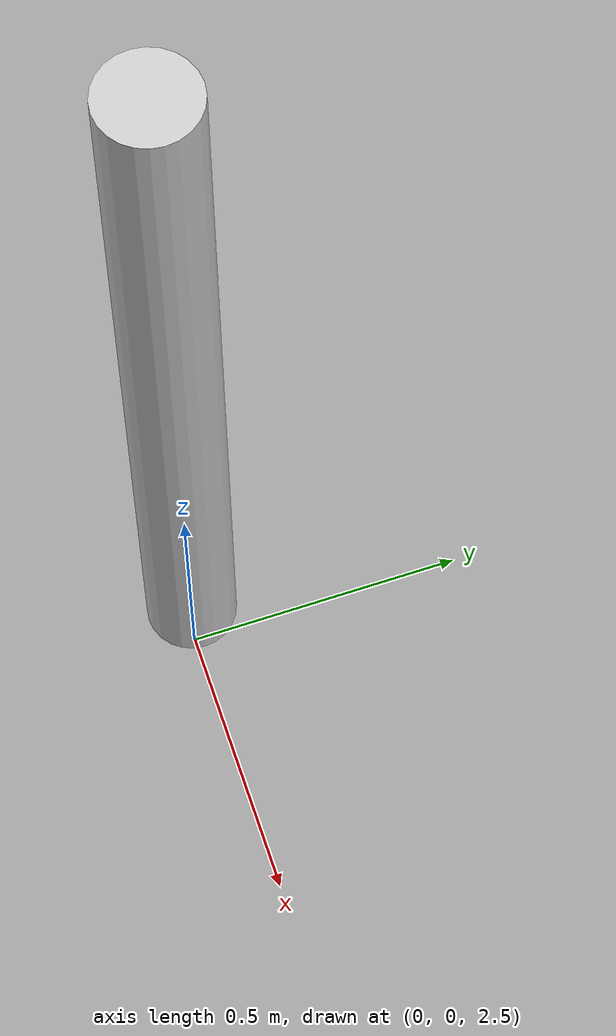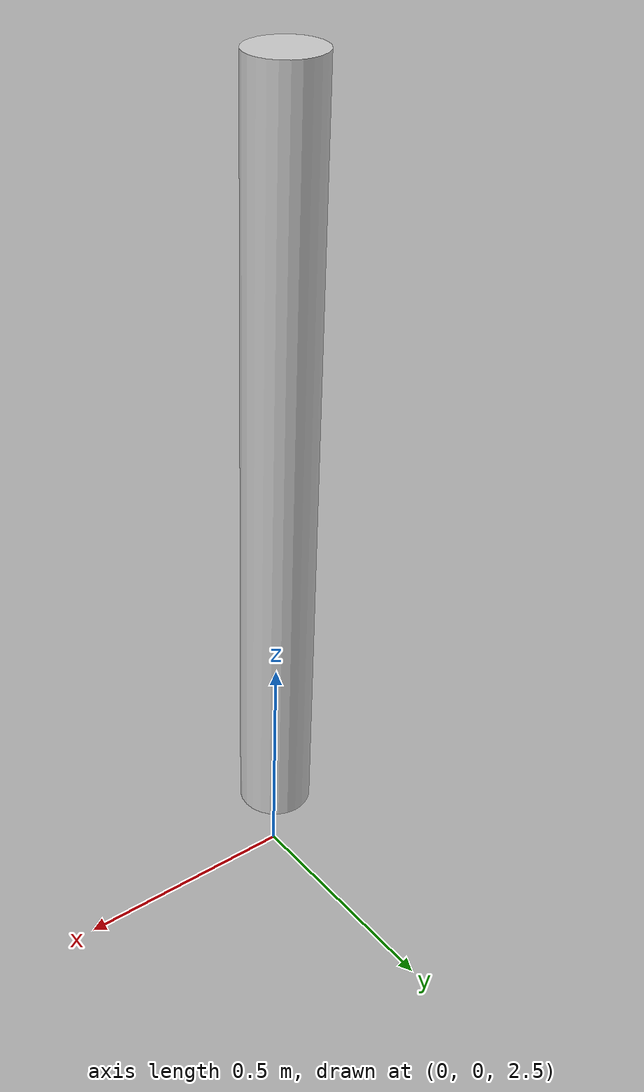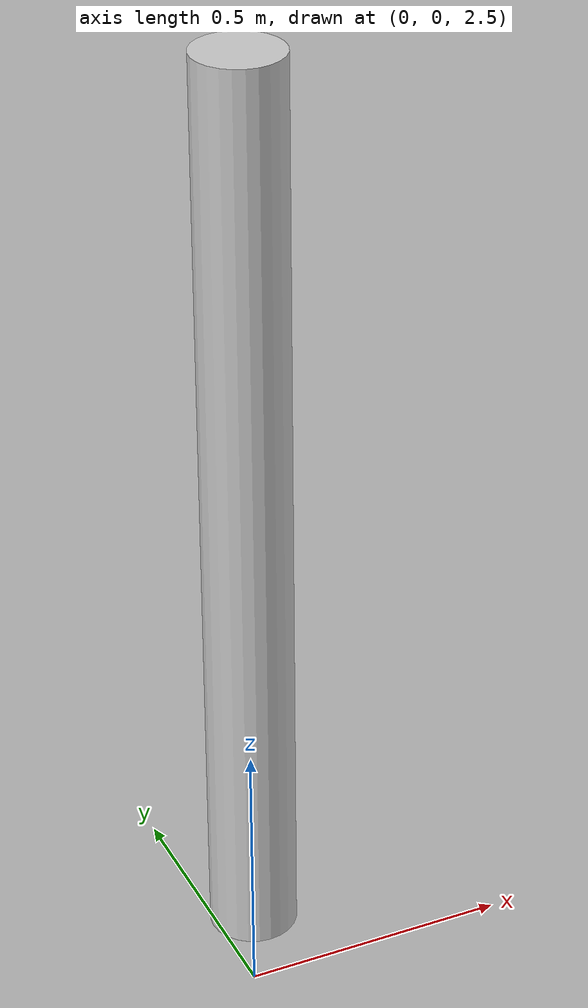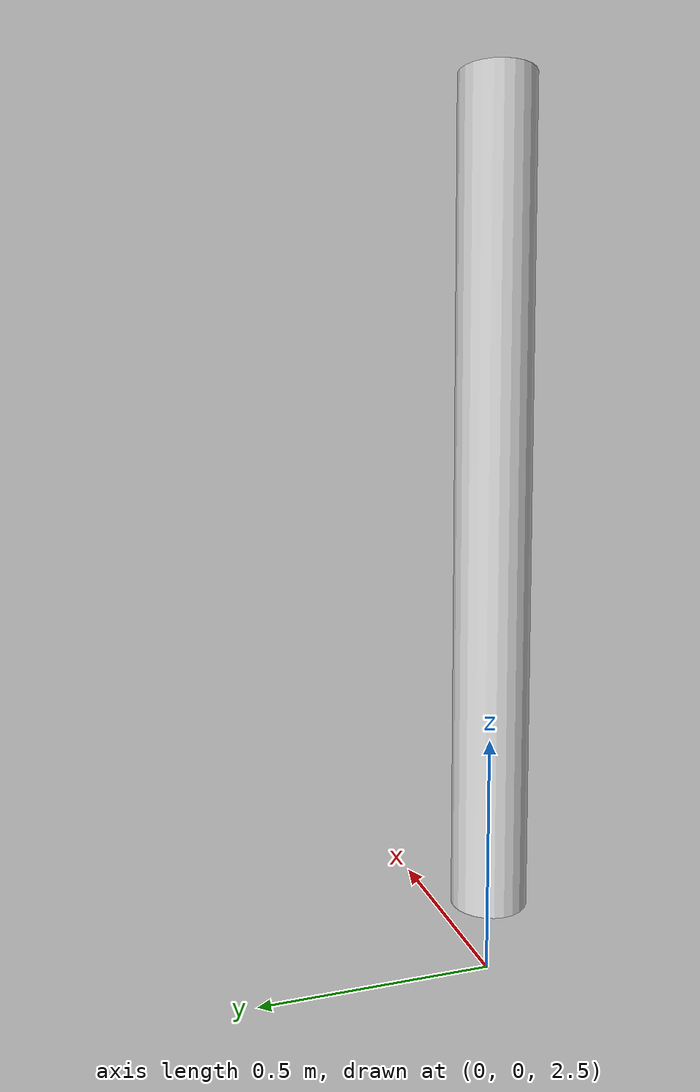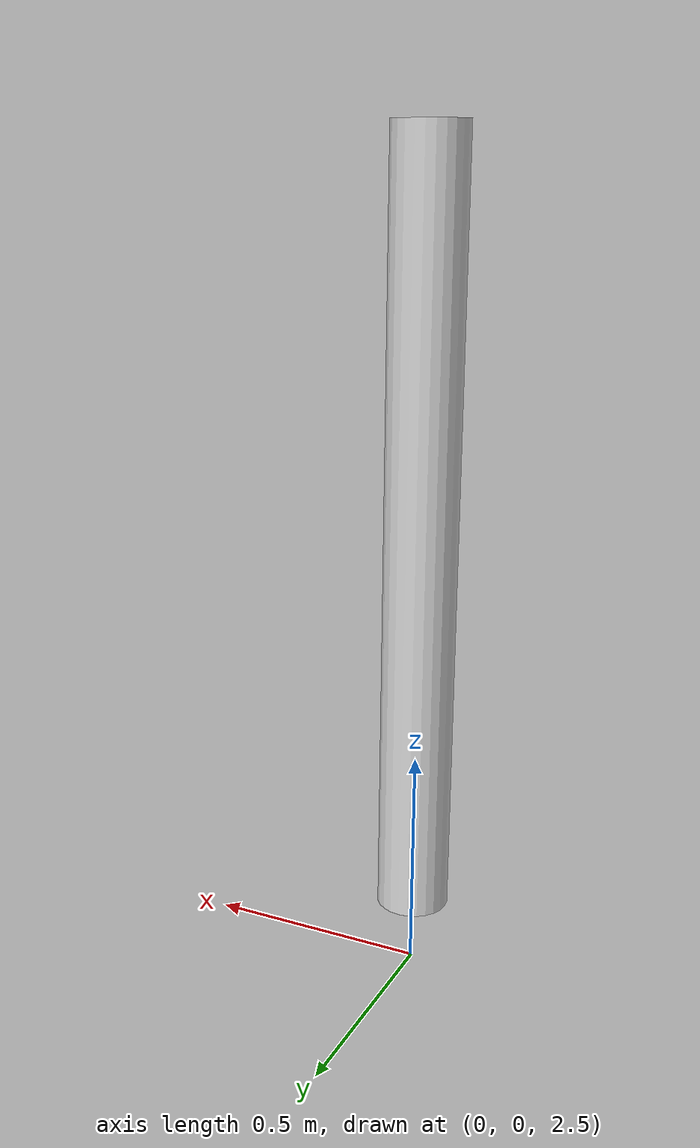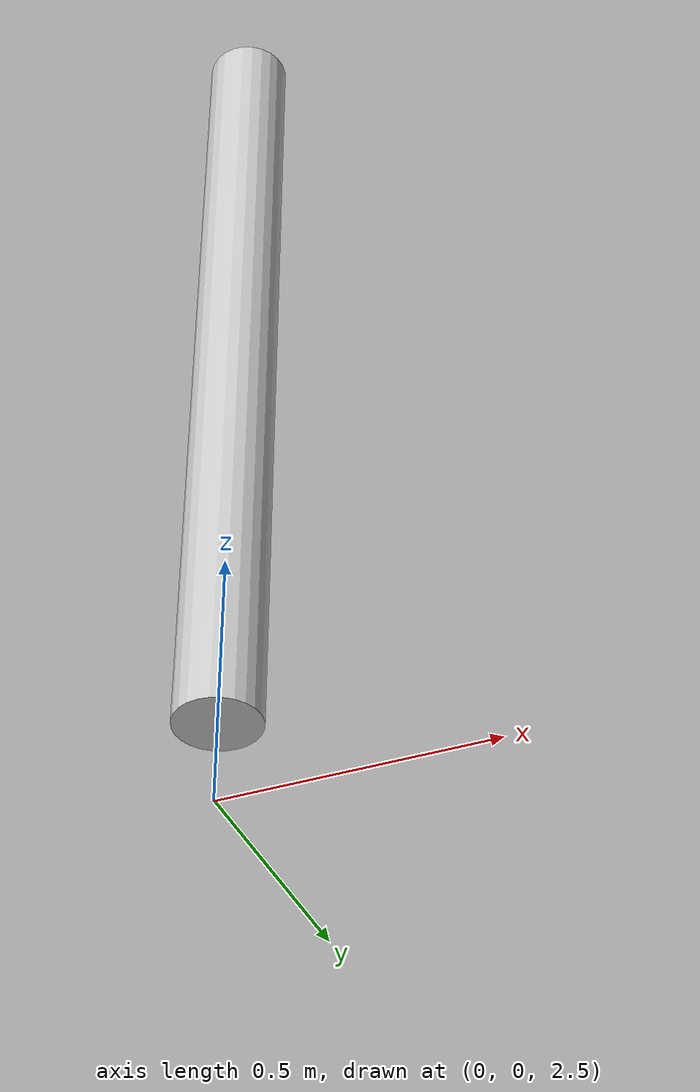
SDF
<?xml version="1.0" ?>
<sdf version="1.7">
    <model name="mossy_bark">
      <static>true</static>
      <pose>0 0 3.5 0 0 0</pose>
      <link name="mossy_bark_link">
        <inertial>
          <inertia>
            <ixx>1</ixx>
            <ixy>0</ixy>
            <ixz>0</ixz>
            <iyy>1</iyy>
            <iyz>0</iyz>
            <izz>1</izz>
          </inertia>
          <mass>1.0</mass>
        </inertial>
        <collision name="mossy_barkcollision">
          <geometry>
            <cylinder>
              <radius>0.08</radius>
              <length>1.7</length>
            </cylinder>
          </geometry>
        </collision>
        <visual name="mossy_barkvisual">
          <geometry>
            <cylinder>
              <radius>0.08</radius>
              <length>1.7</length>
            </cylinder>
          </geometry>
          <material>
            <ambient>0.8 0.8 0.8 1</ambient>
            <diffuse>0.8 0.8 0.8 1</diffuse>
            <specular>0.8 0.8 0.8 1</specular>
            <pbr>
              <metal>
                <albedo_map>file:///root/ignition_textures/mossy_bark/materials/textures/Mossy_bark_02_2K_Base_Color.png</albedo_map>
                <normal_map >file:///root/ignition_textures/mossy_bark/materials/textures/Mossy_bark_02_2K_Normal.png</normal_map>
                <ambient_occlusion_map>file:///root/ignition_textures/mossy_bark/materials/textures/Mossy_bark_02_2K_AO.png</ambient_occlusion_map>
                <roughness_map>file:///root/ignition_textures/mossy_bark/materials/textures/Mossy_bark_02_2K_Roughness.png</roughness_map>
                <roughness>0.9</roughness>
                <metalness_map>file:///root/ignition_textures/mossy_bark/materials/textures/Mossy_bark_02_2K_Height.png</metalness_map>
                <metalness>0.9</metalness>
              </metal>
            </pbr>
            <!-- fallback to classic if no PBR support-->
            <script>
              <uri>file:///root/ignition_textures/mossy_bark/materials/scripts</uri>
              <uri>file:///root/ignition_textures/mossy_bark/materials/textures</uri>
              <name>MossyBark/Diffuse</name>
            </script>
          </material>
        </visual>
      </link>
    </model>
</sdf>
